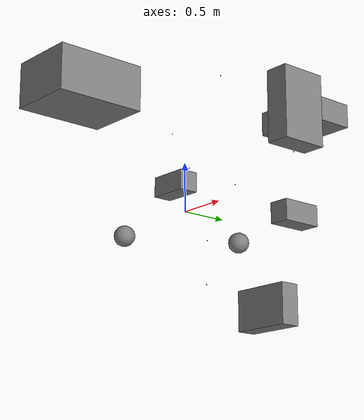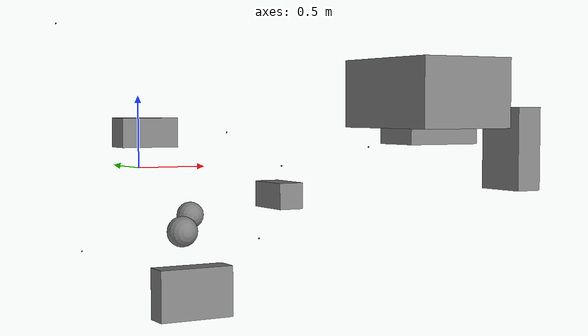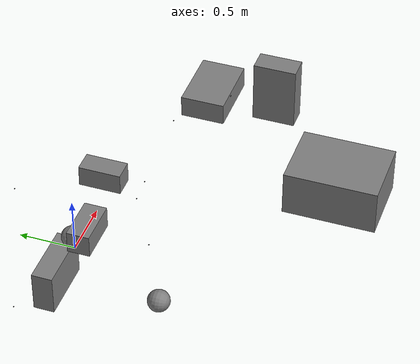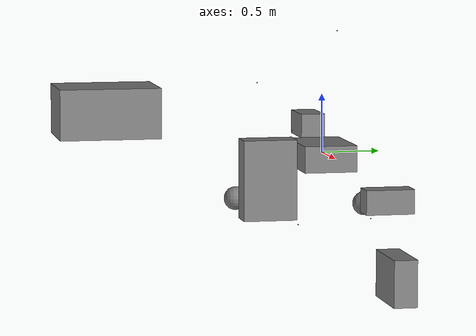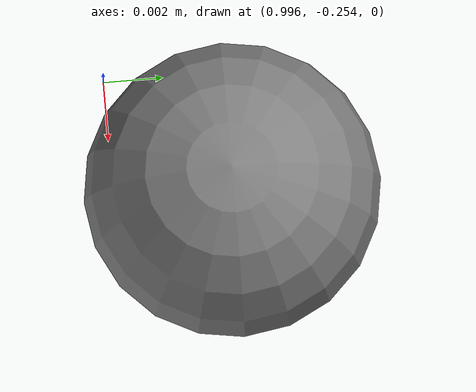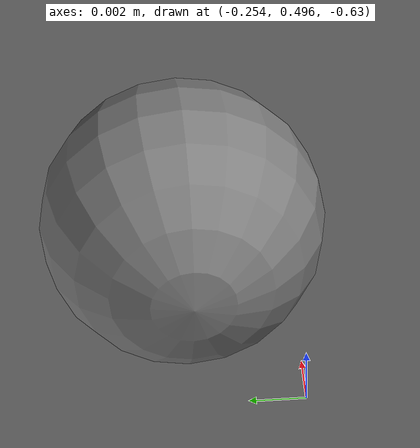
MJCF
<mujoco model="attached_rotated_tree">
  <compiler angle="radian" fusestatic="false"/>
  <worldbody>
    <geom name="world_geom" type="box" size="0.2 0.3 0.4" pos="1 -2 0.5" quat="0.5 0.5 -0.5 0.5"/>
    <site name="world_site" pos="-0.5 0.25 1" quat="0 0 1 0"/>
    <body name="free" pos="0.5 0.25 -0.5" quat="0.5 0.5 0.5 0.5">
      <freejoint/>
      <inertial pos="0.125 -0.25 0.5" quat="0.5 -0.5 0.5 -0.5" mass="2" diaginertia="0.5 0.75 1"/>
      <geom type="box" size="0.1 0.2 0.3" pos="0.25 -0.5 0.125" quat="0 1 0 0"/>
      <site pos="-0.25 0.5 -0.125" quat="0.5 -0.5 0.5 -0.5"/>
      <body name="ball" pos="0.5 0 -0.25" quat="0 0 1 0">
        <joint type="ball" pos="0.25 0.125 -0.125"/>
        <inertial pos="0.5 0.25 -0.125" quat="0 1 0 0" mass="3" diaginertia="1 1.25 1.5"/>
        <geom type="sphere" size="0.1" pos="0.5 0.125 -0.25" quat="0.5 0.5 -0.5 -0.5"/>
        <site pos="0.25 -0.125 0.5" quat="0 0 0 1"/>
      </body>
      <body name="fixed" pos="0 0.5 0.25" quat="0.5 0.5 -0.5 -0.5">
        <inertial pos="0.25 0 0.125" mass="1" diaginertia="0.25 0.375 0.5"/>
        <geom type="box" size="0.1 0.2 0.1" pos="0.25 0.5 0" quat="0.5 -0.5 -0.5 0.5"/>
        <site pos="0 0.25 0.5" quat="0.5 0.5 0.5 0.5"/>
        <body name="two_joints" pos="0.25 -0.5 0.5" quat="0 0 0 1">
          <joint type="slide" axis="1 0 0" ref="0.25"/>
          <joint type="hinge" pos="0.125 -0.25 0.375" axis="0 1 0" ref="-0.5"/>
          <inertial pos="0.125 0.25 -0.5" quat="0.5 0.5 0.5 -0.5" mass="4" diaginertia="1.5 1.75 2"/>
          <geom type="sphere" size="0.1" pos="-0.125 0.25 0.5" quat="0 0 1 0"/>
          <geom type="box" size="0.1 0.1 0.2" pos="0.5 0.25 -0.125" quat="0.5 0.5 -0.5 0.5"/>
          <site pos="0.5 -0.25 0.125" quat="0.5 -0.5 0.5 0.5"/>
          <site pos="-0.25 -0.5 0.125" quat="0 1 0 0"/>
        </body>
      </body>
    </body>
    <body name="static_root" pos="2 -1 0.5" quat="0.5 -0.5 -0.5 0.5">
      <inertial pos="0 0.5 0" mass="2" diaginertia="0.5 0.75 1"/>
      <geom type="box" size="0.2 0.1 0.3" pos="0.5 0.25 -0.125" quat="0 0 0 1"/>
      <site pos="0.125 -0.25 0.5" quat="0 0 1 0"/>
      <body name="hinge" pos="0.25 0.5 0" quat="0 1 0 0">
        <joint type="hinge" pos="-0.25 0.125 0.25" axis="1 0 0" ref="0.125"/>
        <inertial pos="0.125 0 -0.25" quat="0 0 1 0" mass="5" diaginertia="2 2.5 3"/>
        <geom type="box" size="0.1 0.2 0.3" pos="-0.25 0.125 0.5" quat="0.5 0.5 0.5 -0.5"/>
        <site pos="0.5 0.125 -0.25" quat="0.5 -0.5 -0.5 -0.5"/>
      </body>
    </body>
  </worldbody>
</mujoco>
